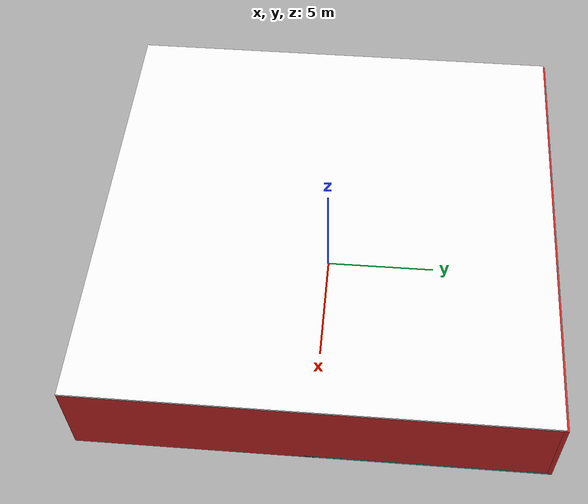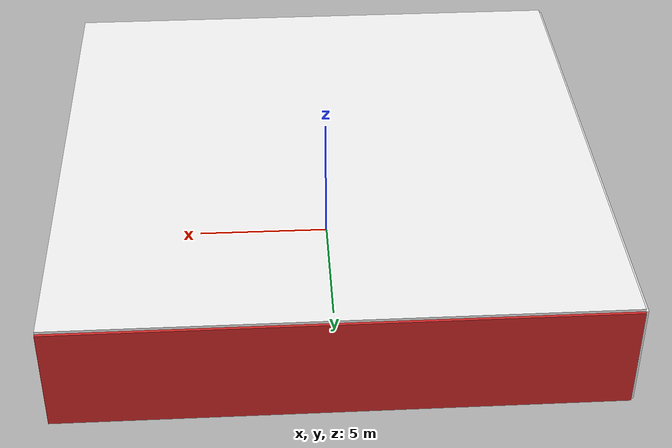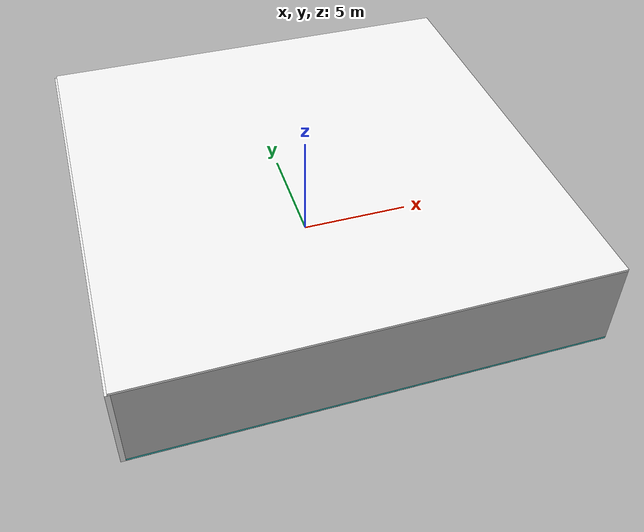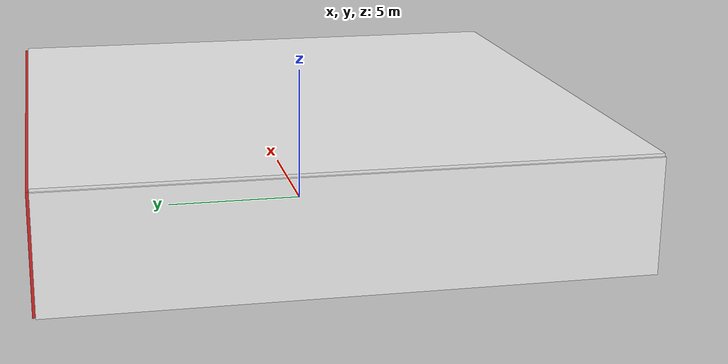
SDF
<sdf version="1.4">
 <world name="default">
  <physics type="ode">
   <max_step_size>0.001</max_step_size>
   <real_time_factor>1</real_time_factor>
   <real_time_update_rate>1000</real_time_update_rate>
   <gravity>0 0 -9.8</gravity>
  </physics>
  <scene><ambient>0.4 0.4 0.4 1</ambient><background>0.7 0.7 0.7 1</background><shadows>1</shadows></scene>
  <model name="Surrounding">
   <static>1</static>
   <link name="Ceiling">
    <collision name="Ceiling_Collision"><geometry><box><size>20 20 0.1</size></box></geometry></collision>
    <visual name="Ceiling_Visual">
     <geometry><box><size>20 20 0.1</size></box></geometry>
     <material>
      <script><uri>file://media/materials/scripts/gazebo.material</uri><name>Gazebo/WhiteGlow</name></script>
     </material>
    </visual>
    <pose>0 0 4.05 0 0 0</pose>
   </link>
   <link name="Wall_South">
    <collision name="Wall_South_Collision">
     <geometry><box><size>20 0 4</size></box></geometry>
     <pose>0 0 2 0 -0 0</pose>
    </collision>
    <visual name="Wall_South_Visual">
     <pose>0 0 2 0 -0 0</pose>
     <geometry><box><size>20 0 4</size></box></geometry>
     <material>
      <script><uri>file://media/materials/scripts/gazebo.material</uri><name>Gazebo/Pioneer2Body</name></script>
     </material>
    </visual>
    <velocity_decay><linear>0</linear><angular>0</angular></velocity_decay>
    <pose>0 -10 0 0 -0 0</pose>
   </link>
   <link name="Wall_East">
    <collision name="Wall_21_Collision">
     <geometry><box><size>20 0 4</size></box></geometry>
     <pose>0 0 2 0 -0 0</pose>
    </collision>
    <visual name="Wall_21_Visual">
     <pose>0 0 2 0 -0 0</pose>
     <geometry><box><size>20 0 4</size></box></geometry>
     <material>
      <script><uri>file://media/materials/scripts/gazebo.material</uri><name>Gazebo/Red</name></script>
     </material>
    </visual>
    <velocity_decay><linear>0</linear><angular>0</angular></velocity_decay>
    <pose>10 0 0 0 -0 1.5708</pose>
   </link>
   <link name="Wall_North">
    <collision name="Wall_22_Collision">
     <geometry><box><size>20 0.2 4</size></box></geometry>
     <pose>0 0 2 0 -0 0</pose>
    </collision>
    <visual name="Wall_22_Visual">
     <pose>0 0 2 0 -0 0</pose>
     <geometry><box><size>20 0.2 4</size></box></geometry>
     <material>
      <script><uri>file://media/materials/scripts/gazebo.material</uri><name>Gazebo/Red</name></script>
     </material>
    </visual>
    <velocity_decay><linear>0</linear><angular>0</angular></velocity_decay>
    <pose>0 10 0 0 -0 0</pose>
   </link>
   <link name="Wall_West">
    <collision name="Wall_23_Collision">
     <geometry><box><size>20 0.2 4</size></box></geometry>
     <pose>0 0 2 0 -0 0</pose>
    </collision>
    <visual name="Wall_23_Visual">
     <pose>0 0 2 0 -0 0</pose>
     <geometry><box><size>20 0.2 4</size></box></geometry>
     <material>
      <script><uri>file://media/materials/scripts/gazebo.material</uri><name>Gazebo/White</name></script>
     </material>
    </visual>
    <velocity_decay><linear>0</linear><angular>0</angular></velocity_decay>
    <pose>-10 0 0 0 0 -1.5708</pose>
   </link>
   <link name="Ground_link">
    <collision name="collision">
     <pose>0 0 .05 0 -0 0</pose>
     <geometry><box><size>20 20 0.1</size></box></geometry>
    </collision>
    <visual name="visual">
     <pose>0 0 .05 0 -0 0</pose>
     <geometry><box><size>20 20 0.1</size></box></geometry>
     <material>
      <script><uri>file://media/materials/scripts/gazebo.material</uri><name>Gazebo/TurquoiseGlow</name></script>
     </material>
    </visual>
   </link>
   <static>1</static>
  </model>
  <spherical_coordinates>
   <surface_model>EARTH_WGS84</surface_model>
   <latitude_deg>0</latitude_deg>
   <longitude_deg>0</longitude_deg>
   <elevation>0</elevation>
   <heading_deg>0</heading_deg>
  </spherical_coordinates>
  <light name="lightball_0" type="diffuse">
   <diffuse>0.8 0.8 0.8 1</diffuse>
   <specular>0.2 0.2 0.2 1</specular>
   <attenuation>
    <range>100</range>
    <constant>0.7</constant>
    <linear>0.01</linear>
    <quadratic>0.001</quadratic>
   </attenuation>
   <direction>-0.5 0.1 -0.9</direction>
   <pose>-1.78585413321 3.63092273705 1.13696238696 0 0 0</pose>
  </light>
  <light name="lightball_1" type="diffuse">
   <diffuse>0.8 0.8 0.8 1</diffuse>
   <specular>0.2 0.2 0.2 1</specular>
   <attenuation>
    <range>100</range>
    <constant>0.7</constant>
    <linear>0.01</linear>
    <quadratic>0.001</quadratic>
   </attenuation>
   <direction>-0.5 0.1 -0.9</direction>
   <pose>-7.60627042537 7.9629835191 0.63289256337 0 0 0</pose>
  </light>
  <light name="lightball_2" type="diffuse">
   <diffuse>0.8 0.8 0.8 1</diffuse>
   <specular>0.2 0.2 0.2 1</specular>
   <attenuation>
    <range>100</range>
    <constant>0.7</constant>
    <linear>0.01</linear>
    <quadratic>0.001</quadratic>
   </attenuation>
   <direction>-0.5 0.1 -0.9</direction>
   <pose>-5.89485296184 -8.6316403859 2.68691892011 0 0 0</pose>
  </light>
  <light name="lightball_3" type="diffuse">
   <diffuse>0.8 0.8 0.8 1</diffuse>
   <specular>0.2 0.2 0.2 1</specular>
   <attenuation>
    <range>100</range>
    <constant>0.7</constant>
    <linear>0.01</linear>
    <quadratic>0.001</quadratic>
   </attenuation>
   <direction>-0.5 0.1 -0.9</direction>
   <pose>0.770240215164 -8.6234475565 0.683243072005 0 0 0</pose>
  </light>
  <light name="lightball_4" type="diffuse">
   <diffuse>0.8 0.8 0.8 1</diffuse>
   <specular>0.2 0.2 0.2 1</specular>
   <attenuation>
    <range>100</range>
    <constant>0.7</constant>
    <linear>0.01</linear>
    <quadratic>0.001</quadratic>
   </attenuation>
   <direction>-0.5 0.1 -0.9</direction>
   <pose>-5.3264991884 -3.51024769964 2.51808528226 0 0 0</pose>
  </light>
  <light name="lightball_5" type="diffuse">
   <diffuse>0.8 0.8 0.8 1</diffuse>
   <specular>0.2 0.2 0.2 1</specular>
   <attenuation>
    <range>100</range>
    <constant>0.7</constant>
    <linear>0.01</linear>
    <quadratic>0.001</quadratic>
   </attenuation>
   <direction>-0.5 0.1 -0.9</direction>
   <pose>9.99397046115 -2.39313500253 1.33454572858 0 0 0</pose>
  </light>
  <light name="lightball_6" type="diffuse">
   <diffuse>0.8 0.8 0.8 1</diffuse>
   <specular>0.2 0.2 0.2 1</specular>
   <attenuation>
    <range>100</range>
    <constant>0.7</constant>
    <linear>0.01</linear>
    <quadratic>0.001</quadratic>
   </attenuation>
   <direction>-0.5 0.1 -0.9</direction>
   <pose>-8.75097911743 -7.2826376859 0.665552790111 0 0 0</pose>
  </light>
  <light name="lightball_7" type="diffuse">
   <diffuse>0.8 0.8 0.8 1</diffuse>
   <specular>0.2 0.2 0.2 1</specular>
   <attenuation>
    <range>100</range>
    <constant>0.7</constant>
    <linear>0.01</linear>
    <quadratic>0.001</quadratic>
   </attenuation>
   <direction>-0.5 0.1 -0.9</direction>
   <pose>9.29454495207 1.04864269266 2.93732726076 0 0 0</pose>
  </light>
  <light name="lightball_8" type="diffuse">
   <diffuse>0.8 0.8 0.8 1</diffuse>
   <specular>0.2 0.2 0.2 1</specular>
   <attenuation>
    <range>100</range>
    <constant>0.7</constant>
    <linear>0.01</linear>
    <quadratic>0.001</quadratic>
   </attenuation>
   <direction>-0.5 0.1 -0.9</direction>
   <pose>8.54281441925 -0.949128793208 1.60509324379 0 0 0</pose>
  </light>
  <light name="lightball_9" type="diffuse">
   <diffuse>0.8 0.8 0.8 1</diffuse>
   <specular>0.2 0.2 0.2 1</specular>
   <attenuation>
    <range>100</range>
    <constant>0.7</constant>
    <linear>0.01</linear>
    <quadratic>0.001</quadratic>
   </attenuation>
   <direction>-0.5 0.1 -0.9</direction>
   <pose>-2.41609065226 5.93107122249 1.39300738824 0 0 0</pose>
  </light>
  <light name="lightball_10" type="diffuse">
   <diffuse>0.8 0.8 0.8 1</diffuse>
   <specular>0.2 0.2 0.2 1</specular>
   <attenuation>
    <range>100</range>
    <constant>0.7</constant>
    <linear>0.01</linear>
    <quadratic>0.001</quadratic>
   </attenuation>
   <direction>-0.5 0.1 -0.9</direction>
   <pose>8.8472471756 -4.47790630576 3.68176860124 0 0 0</pose>
  </light>
  <light name="lightball_11" type="diffuse">
   <diffuse>0.8 0.8 0.8 1</diffuse>
   <specular>0.2 0.2 0.2 1</specular>
   <attenuation>
    <range>100</range>
    <constant>0.7</constant>
    <linear>0.01</linear>
    <quadratic>0.001</quadratic>
   </attenuation>
   <direction>-0.5 0.1 -0.9</direction>
   <pose>6.78364009765 8.91739853 2.03484660671 0 0 0</pose>
  </light>
  <include>
   <uri>model://construction_cone</uri>
   <pose>-6.69875792788 2.19508471947 0 0 0 2.1046646035</pose>
  </include>
  <include>
   <uri>model://construction_cone</uri>
   <pose>-6.55729443967 7.94252897283 0 0 0 0.627015981659</pose>
  </include>
  <include><uri>model://table</uri><pose>-4.98109400456 5.08460127267 0 0 0 2.25489947041</pose></include>
  <include><uri>model://cabinet</uri><pose>-1.58567001765 -6.94264354394 0 0 0 1.70388445907</pose></include>
  <include>
   <uri>model://construction_cone</uri>
   <pose>-0.727248669187 -1.50596229583 0 0 0 1.6403465727</pose>
  </include>
  <include>
   <uri>model://construction_cone</uri>
   <pose>-0.462048108327 6.64034639571 0 0 0 2.91810269186</pose>
  </include>
  <include><uri>model://cabinet</uri><pose>1.91564695392 2.39619226966 0 0 0 3.05654548008</pose></include>
  <include>
   <uri>model://textured_shapes</uri>
   <pose>5.61140131073 1.52321741962 0 0 0 2.02619178335</pose>
  </include>
 </world>
</sdf>

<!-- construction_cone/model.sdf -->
<sdf version="1.5">
  <model name="Construction Cone">
    <link name="link">
      <collision name="collision">
        <geometry>
          <mesh>
            <scale>10 10 10</scale>
            <uri>file://isr-testbed/construction_cone/meshes/construction_cone.dae</uri>
          </mesh>
        </geometry>
      </collision>
      <visual name="visual">
        <geometry>
          <mesh>
            <scale>10 10 10</scale>
            <uri>file://isr-testbed/construction_cone/meshes/construction_cone.dae</uri>
          </mesh>
        </geometry>
      </visual>
    </link>
  </model>
</sdf>

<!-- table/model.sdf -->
<sdf version="1.5">
  <model name="table">
    <static>true</static>
    <link name="link">
      <collision name="surface">
        <pose>0 0 1.0 0 0 0</pose>
        <geometry>
          <box>
            <size>1.5 0.8 0.03</size>
          </box>
        </geometry>
        <surface>
          <friction>
            <ode>
              <mu>0.6</mu>
              <mu2>0.6</mu2>
            </ode>
          </friction>
        </surface>
      </collision>
      <visual name="visual1">
        <pose>0 0 1.0 0 0 0</pose>
        <geometry>
          <box>
            <size>1.5 0.8 0.03</size>
          </box>
        </geometry>
        <material>
          <script>
            <uri>model://media/materials/scripts/gazebo.material</uri>
            <name>Gazebo/Wood</name>
          </script>
        </material>
      </visual>
      <collision name="front_left_leg">
        <pose>0.68 0.38 0.5 0 0 0</pose>
        <geometry>
          <cylinder>
            <radius>0.02</radius>
            <length>1.0</length>
          </cylinder>
        </geometry>
      </collision>
      <visual name="front_left_leg">
        <pose>0.68 0.38 0.5 0 0 0</pose>
        <geometry>
          <cylinder>
            <radius>0.02</radius>
            <length>1.0</length>
          </cylinder>
        </geometry>
        <material>
          <script>
            <uri>model://media/materials/scripts/gazebo.material</uri>
            <name>Gazebo/Grey</name>
          </script>
        </material>
      </visual>
      <collision name="front_right_leg">
        <pose>0.68 -0.38 0.5 0 0 0</pose>
        <geometry>
          <cylinder>
            <radius>0.02</radius>
            <length>1.0</length>
          </cylinder>
        </geometry>
      </collision>
      <visual name="front_right_leg">
        <pose>0.68 -0.38 0.5 0 0 0</pose>
        <geometry>
          <cylinder>
            <radius>0.02</radius>
            <length>1.0</length>
          </cylinder>
        </geometry>
        <material>
          <script>
            <uri>model://media/materials/scripts/gazebo.material</uri>
            <name>Gazebo/Grey</name>
          </script>
        </material>
      </visual>
      <collision name="back_right_leg">
        <pose>-0.68 -0.38 0.5 0 0 0</pose>
        <geometry>
          <cylinder>
            <radius>0.02</radius>
            <length>1.0</length>
          </cylinder>
        </geometry>
      </collision>
      <visual name="back_right_leg">
        <pose>-0.68 -0.38 0.5 0 0 0</pose>
        <geometry>
          <cylinder>
            <radius>0.02</radius>
            <length>1.0</length>
          </cylinder>
        </geometry>
        <material>
          <script>
            <uri>model://media/materials/scripts/gazebo.material</uri>
            <name>Gazebo/Grey</name>
          </script>
        </material>
      </visual>
      <collision name="back_left_leg">
        <pose>-0.68 0.38 0.5 0 0 0</pose>
        <geometry>
          <cylinder>
            <radius>0.02</radius>
            <length>1.0</length>
          </cylinder>
        </geometry>
      </collision>
      <visual name="back_left_leg">
        <pose>-0.68 0.38 0.5 0 0 0</pose>
        <geometry>
          <cylinder>
            <radius>0.02</radius>
            <length>1.0</length>
          </cylinder>
        </geometry>
        <material>
          <script>
            <uri>model://media/materials/scripts/gazebo.material</uri>
            <name>Gazebo/Grey</name>
          </script>
        </material>
      </visual>
    </link>
  </model>
</sdf>

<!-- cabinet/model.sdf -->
<sdf version="1.5">
  <model name="cabinet">
    <static>true</static>
    <link name="cabinet_bottom_plate">
      <inertial>
        <pose>0 0 -1 0 0 0</pose>
        <inertia>
          <ixx>2.050000</ixx>
          <ixy>0</ixy>
          <ixz>0</ixz>
          <iyy>2.050000</iyy>
          <iyz>0</iyz>
          <izz>2.050000</izz>
        </inertia>
        <mass>25.000000</mass>
      </inertial>
      <collision name="cabinet_bottom_plate_geom">
        <pose>0 0 0.010000 0 0 0</pose>
        <geometry>
          <box>
            <size>0.450000 0.450000 0.020000</size>
          </box>
        </geometry>
      </collision>
      <visual name="cabinet_bottom_plate_geom_visual">
        <pose>0 0 0.010000 0 0 0</pose>
        <geometry>
          <box>
            <size>0.450000 0.450000 0.020000</size>
          </box>
        </geometry>
        <material>
          <script>
            <uri>model://media/materials/scripts/gazebo.material</uri>
            <name>Gazebo/Wood</name>
          </script>
        </material>
      </visual>
      <collision name="cabinet_bottom_plate_geom_cabinet_back_plate">
        <pose>0.235000 0 0.510000 0 0 0</pose>
        <geometry>
          <box>
            <size>0.020000 0.450000 1.020000</size>
          </box>
        </geometry>
      </collision>
      <visual name="cabinet_bottom_plate_geom_cabinet_back_plate_visual">
        <pose>0.235000 0 0.510000 0 0 0</pose>
        <geometry>
          <box>
            <size>0.020000 0.450000 1.020000</size>
          </box>
        </geometry>
        <material>
          <script>
            <uri>model://media/materials/scripts/gazebo.material</uri>
            <name>Gazebo/Wood</name>
          </script>
        </material>
      </visual>
      <collision name="cabinet_bottom_plate_geom_cabinet_left_plate">
        <pose>0 0.235000 0.510000 0 0 0</pose>
        <geometry>
          <box>
            <size>0.450000 0.020000 1.020000</size>
          </box>
        </geometry>
      </collision>
      <visual name="cabinet_bottom_plate_geom_cabinet_left_plate_visual">
        <pose>0 0.235000 0.510000 0 0 0</pose>
        <geometry>
          <box>
            <size>0.450000 0.020000 1.020000</size>
          </box>
        </geometry>
        <material>
          <script>
            <uri>model://media/materials/scripts/gazebo.material</uri>
            <name>Gazebo/Wood</name>
          </script>
        </material>
      </visual>
      <collision name="cabinet_bottom_plate_geom_cabinet_middle_plate">
        <pose>0 0 0.510000 0 0 0</pose>
        <geometry>
          <box>
            <size>0.450000 0.450000 0.020000</size>
          </box>
        </geometry>
      </collision>
      <visual name="cabinet_bottom_plate_geom_cabinet_middle_plate_visual">
        <pose>0 0 0.510000 0 0 0</pose>
        <geometry>
          <box>
            <size>0.450000 0.450000 0.020000</size>
          </box>
        </geometry>
        <material>
          <script>
            <uri>model://media/materials/scripts/gazebo.material</uri>
            <name>Gazebo/Wood</name>
          </script>
        </material>
      </visual>
      <collision name="cabinet_bottom_plate_geom_cabinet_right_plate">
        <pose>0 -0.235000 0.510000 0 0 0</pose>
        <geometry>
          <box>
            <size>0.450000 0.020000 1.020000</size>
          </box>
        </geometry>
      </collision>
      <visual name="cabinet_bottom_plate_geom_cabinet_right_plate_visual">
        <pose>0 -0.235000 0.510000 0 0 0</pose>
        <geometry>
          <box>
            <size>0.450000 0.020000 1.020000</size>
          </box>
        </geometry>
        <material>
          <script>
            <uri>model://media/materials/scripts/gazebo.material</uri>
            <name>Gazebo/Wood</name>
          </script>
        </material>
      </visual>
      <collision name="cabinet_bottom_plate_geom_cabinet_top_plate">
        <pose>0 0 1.010000 0 0 0</pose>
        <geometry>
          <box>
            <size>0.450000 0.450000 0.020000</size>
          </box>
        </geometry>
      </collision>
      <visual name="cabinet_bottom_plate_geom_cabinet_top_plate_visual">
        <pose>0 0 1.010000 0 0 0</pose>
        <geometry>
          <box>
            <size>0.450000 0.450000 0.020000</size>
          </box>
        </geometry>
        <material>
          <script>
            <uri>model://media/materials/scripts/gazebo.material</uri>
            <name>Gazebo/Wood</name>
          </script>
        </material>
      </visual>
    </link>
  </model>
</sdf>

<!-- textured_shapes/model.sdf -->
<sdf version="1.6">
  <model name="textured_shapes">
    <pose>0 0 0.5 0 0 0</pose>
    <link name="box">
      <pose>0 -1.5 0 0 0 0</pose>
      <collision name="collision">
        <geometry>
          <box>
            <size>1 1 1</size>
          </box>
        </geometry>
      </collision>
      <visual name="visual">
        <geometry>
          <box>
            <size>1 1 1</size>
          </box>
        </geometry>
        <material>
          <script>
            <uri>model://../model_source/models/textured_shapes/materials/scripts</uri>
            <uri>model://../model_source/models/textured_shapes/materials/textures</uri>
            <name>TexturedShape/Squares</name>
          </script>
        </material>
      </visual>
    </link>
    <link name="sphere">
      <collision name="collision">
        <geometry>
          <sphere>
            <radius>0.5</radius>
          </sphere>
        </geometry>
      </collision>
      <visual name="visual">
        <geometry>
          <sphere>
            <radius>0.5</radius>
          </sphere>
        </geometry>
        <material>
          <script>
            <uri>model://../model_source/models/textured_shapes/materials/scripts</uri>
            <uri>model://../model_source/models/textured_shapes/materials/textures</uri>
            <name>TexturedShape/Squares</name>
          </script>
        </material>
      </visual>
    </link>
    <link name="cylinder">
      <pose>0 1.5 0 0 0 0</pose>
      <collision name="collision">
        <geometry>
          <cylinder>
            <radius>0.5</radius>
            <length>1</length>
          </cylinder>
        </geometry>
      </collision>
      <visual name="visual">
        <geometry>
          <cylinder>
            <radius>0.5</radius>
            <length>1</length>
          </cylinder>
        </geometry>
        <material>
          <script>
            <uri>model://../model_source/models/textured_shapes/materials/scripts</uri>
            <uri>model://../model_source/models/textured_shapes/materials/textures</uri>
            <name>TexturedShape/Squares</name>
          </script>
        </material>
      </visual>
    </link>
  </model>
</sdf>
